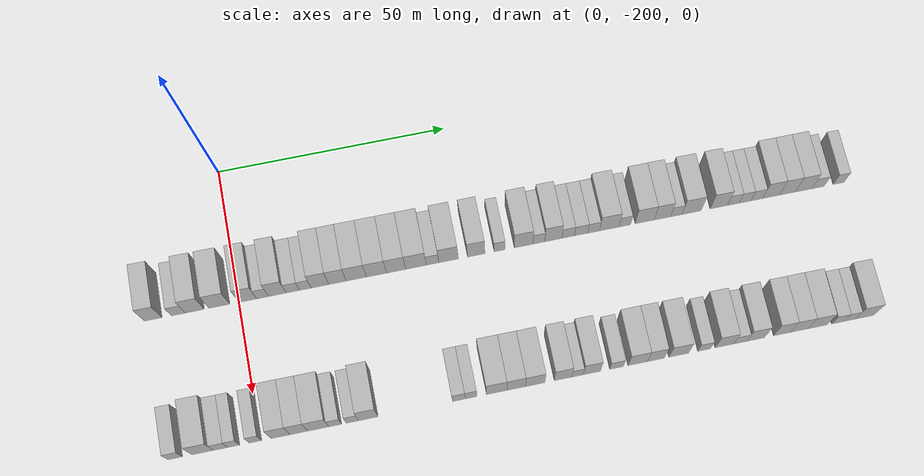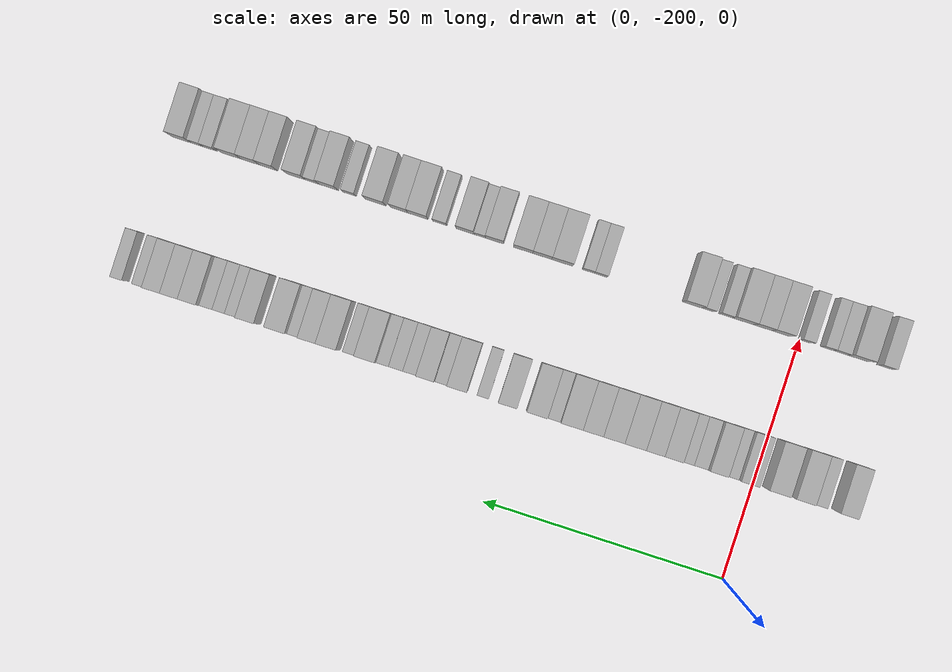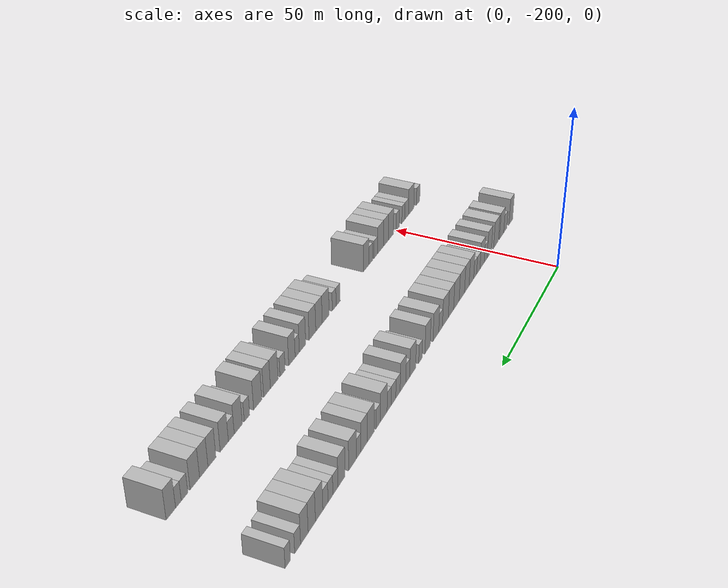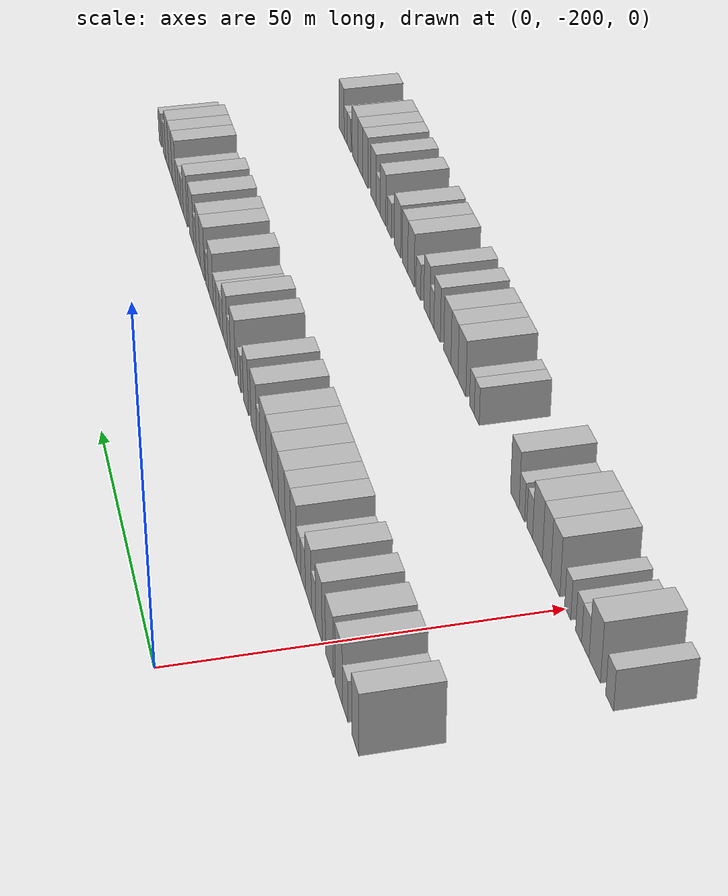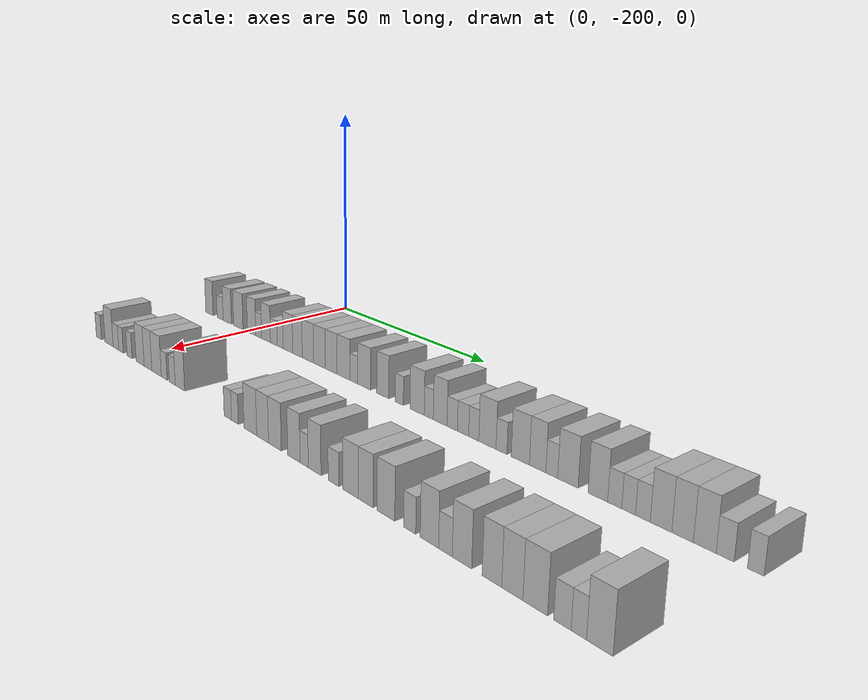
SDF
<sdf version="1.6">
 <world name="default">
  <model name="building_1">
   <static>1</static>
   <pose>25.0000 -218.1381 0 0.000000 0.000000 0.000000</pose>
   <link name="link">
    <pose>0 0 4.50 0 0 0</pose>
    <collision name="collision"><geometry><box><size>10.0000 3.7239 9.0000</size></box></geometry></collision>
    <visual name="visual">
     <cast_shadows>0</cast_shadows>
     <geometry><box><size>10.0000 3.7239 9.0000</size></box></geometry>
     <material>
      <script>
       <uri>model://HANNAS_wall/materials/scripts</uri>
       <uri>model://HANNAS_wall/materials/textures</uri>
       <name>vrc/HANNAS_wall</name>
      </script>
     </material>
    </visual>
   </link>
  </model>
  <model name="building_2">
   <static>1</static>
   <pose>25.0000 -212.7857 0 0.000000 0.000000 0.000000</pose>
   <link name="link">
    <pose>0 0 3.00 0 0 0</pose>
    <collision name="collision"><geometry><box><size>10.0000 2.9808 6.0000</size></box></geometry></collision>
    <visual name="visual">
     <cast_shadows>0</cast_shadows>
     <geometry><box><size>10.0000 2.9808 6.0000</size></box></geometry>
     <material>
      <script>
       <uri>model://HANNAS_wall/materials/scripts</uri>
       <uri>model://HANNAS_wall/materials/textures</uri>
       <name>vrc/HANNAS_wall</name>
      </script>
     </material>
    </visual>
   </link>
  </model>
  <model name="building_3">
   <static>1</static>
   <pose>25.0000 -209.2889 0 0.000000 0.000000 0.000000</pose>
   <link name="link">
    <pose>0 0 4.50 0 0 0</pose>
    <collision name="collision"><geometry><box><size>10.0000 4.0128 9.0000</size></box></geometry></collision>
    <visual name="visual">
     <cast_shadows>0</cast_shadows>
     <geometry><box><size>10.0000 4.0128 9.0000</size></box></geometry>
     <material>
      <script>
       <uri>model://HANNAS_wall/materials/scripts</uri>
       <uri>model://HANNAS_wall/materials/textures</uri>
       <name>vrc/HANNAS_wall</name>
      </script>
     </material>
    </visual>
   </link>
  </model>
  <model name="building_4">
   <static>1</static>
   <pose>25.0000 -204.0694 0 0.000000 0.000000 0.000000</pose>
   <link name="link">
    <pose>0 0 4.50 0 0 0</pose>
    <collision name="collision"><geometry><box><size>10.0000 4.4262 9.0000</size></box></geometry></collision>
    <visual name="visual">
     <cast_shadows>0</cast_shadows>
     <geometry><box><size>10.0000 4.4262 9.0000</size></box></geometry>
     <material>
      <script>
       <uri>model://HANNAS_wall/materials/scripts</uri>
       <uri>model://HANNAS_wall/materials/textures</uri>
       <name>vrc/HANNAS_wall</name>
      </script>
     </material>
    </visual>
   </link>
  </model>
  <model name="building_5">
   <static>1</static>
   <pose>25.0000 -197.9782 0 0.000000 0.000000 0.000000</pose>
   <link name="link">
    <pose>0 0 4.50 0 0 0</pose>
    <collision name="collision"><geometry><box><size>10.0000 3.7562 9.0000</size></box></geometry></collision>
    <visual name="visual">
     <cast_shadows>0</cast_shadows>
     <geometry><box><size>10.0000 3.7562 9.0000</size></box></geometry>
     <material>
      <script>
       <uri>model://HANNAS_wall/materials/scripts</uri>
       <uri>model://HANNAS_wall/materials/textures</uri>
       <name>vrc/HANNAS_wall</name>
      </script>
     </material>
    </visual>
   </link>
  </model>
  <model name="building_6">
   <static>1</static>
   <pose>25.0000 -194.8246 0 0.000000 0.000000 0.000000</pose>
   <link name="link">
    <pose>0 0 3.00 0 0 0</pose>
    <collision name="collision"><geometry><box><size>10.0000 2.5508 6.0000</size></box></geometry></collision>
    <visual name="visual">
     <cast_shadows>0</cast_shadows>
     <geometry><box><size>10.0000 2.5508 6.0000</size></box></geometry>
     <material>
      <script>
       <uri>model://HANNAS_wall/materials/scripts</uri>
       <uri>model://HANNAS_wall/materials/textures</uri>
       <name>vrc/HANNAS_wall</name>
      </script>
     </material>
    </visual>
   </link>
  </model>
  <model name="building_7">
   <static>1</static>
   <pose>25.0000 -191.6689 0 0.000000 0.000000 0.000000</pose>
   <link name="link">
    <pose>0 0 4.50 0 0 0</pose>
    <collision name="collision"><geometry><box><size>10.0000 3.7607 9.0000</size></box></geometry></collision>
    <visual name="visual">
     <cast_shadows>0</cast_shadows>
     <geometry><box><size>10.0000 3.7607 9.0000</size></box></geometry>
     <material>
      <script>
       <uri>model://HANNAS_wall/materials/scripts</uri>
       <uri>model://HANNAS_wall/materials/textures</uri>
       <name>vrc/HANNAS_wall</name>
      </script>
     </material>
    </visual>
   </link>
  </model>
  <model name="building_8">
   <static>1</static>
   <pose>25.0000 -188.3491 0 0.000000 0.000000 0.000000</pose>
   <link name="link">
    <pose>0 0 3.00 0 0 0</pose>
    <collision name="collision"><geometry><box><size>10.0000 2.8788 6.0000</size></box></geometry></collision>
    <visual name="visual">
     <cast_shadows>0</cast_shadows>
     <geometry><box><size>10.0000 2.8788 6.0000</size></box></geometry>
     <material>
      <script>
       <uri>model://HANNAS_wall/materials/scripts</uri>
       <uri>model://HANNAS_wall/materials/textures</uri>
       <name>vrc/HANNAS_wall</name>
      </script>
     </material>
    </visual>
   </link>
  </model>
  <model name="building_9">
   <static>1</static>
   <pose>25.0000 -185.6596 0 0.000000 0.000000 0.000000</pose>
   <link name="link">
    <pose>0 0 3.00 0 0 0</pose>
    <collision name="collision"><geometry><box><size>10.0000 2.5003 6.0000</size></box></geometry></collision>
    <visual name="visual">
     <cast_shadows>0</cast_shadows>
     <geometry><box><size>10.0000 2.5003 6.0000</size></box></geometry>
     <material>
      <script>
       <uri>model://HANNAS_wall/materials/scripts</uri>
       <uri>model://HANNAS_wall/materials/textures</uri>
       <name>vrc/HANNAS_wall</name>
      </script>
     </material>
    </visual>
   </link>
  </model>
  <model name="building_10">
   <static>1</static>
   <pose>25.0000 -182.4917 0 0.000000 0.000000 0.000000</pose>
   <link name="link">
    <pose>0 0 4.50 0 0 0</pose>
    <collision name="collision"><geometry><box><size>10.0000 3.8355 9.0000</size></box></geometry></collision>
    <visual name="visual">
     <cast_shadows>0</cast_shadows>
     <geometry><box><size>10.0000 3.8355 9.0000</size></box></geometry>
     <material>
      <script>
       <uri>model://HANNAS_wall/materials/scripts</uri>
       <uri>model://HANNAS_wall/materials/textures</uri>
       <name>vrc/HANNAS_wall</name>
      </script>
     </material>
    </visual>
   </link>
  </model>
  <model name="building_11">
   <static>1</static>
   <pose>25.0000 -178.6902 0 0.000000 0.000000 0.000000</pose>
   <link name="link">
    <pose>0 0 4.50 0 0 0</pose>
    <collision name="collision"><geometry><box><size>10.0000 3.7673 9.0000</size></box></geometry></collision>
    <visual name="visual">
     <cast_shadows>0</cast_shadows>
     <geometry><box><size>10.0000 3.7673 9.0000</size></box></geometry>
     <material>
      <script>
       <uri>model://HANNAS_wall/materials/scripts</uri>
       <uri>model://HANNAS_wall/materials/textures</uri>
       <name>vrc/HANNAS_wall</name>
      </script>
     </material>
    </visual>
   </link>
  </model>
  <model name="building_12">
   <static>1</static>
   <pose>25.0000 -174.6335 0 0.000000 0.000000 0.000000</pose>
   <link name="link">
    <pose>0 0 4.50 0 0 0</pose>
    <collision name="collision"><geometry><box><size>10.0000 4.3462 9.0000</size></box></geometry></collision>
    <visual name="visual">
     <cast_shadows>0</cast_shadows>
     <geometry><box><size>10.0000 4.3462 9.0000</size></box></geometry>
     <material>
      <script>
       <uri>model://HANNAS_wall/materials/scripts</uri>
       <uri>model://HANNAS_wall/materials/textures</uri>
       <name>vrc/HANNAS_wall</name>
      </script>
     </material>
    </visual>
   </link>
  </model>
  <model name="building_13">
   <static>1</static>
   <pose>25.0000 -170.2885 0 0.000000 0.000000 0.000000</pose>
   <link name="link">
    <pose>0 0 4.50 0 0 0</pose>
    <collision name="collision"><geometry><box><size>10.0000 4.3437 9.0000</size></box></geometry></collision>
    <visual name="visual">
     <cast_shadows>0</cast_shadows>
     <geometry><box><size>10.0000 4.3437 9.0000</size></box></geometry>
     <material>
      <script>
       <uri>model://HANNAS_wall/materials/scripts</uri>
       <uri>model://HANNAS_wall/materials/textures</uri>
       <name>vrc/HANNAS_wall</name>
      </script>
     </material>
    </visual>
   </link>
  </model>
  <model name="building_14">
   <static>1</static>
   <pose>25.0000 -166.0444 0 0.000000 0.000000 0.000000</pose>
   <link name="link">
    <pose>0 0 4.50 0 0 0</pose>
    <collision name="collision"><geometry><box><size>10.0000 4.1443 9.0000</size></box></geometry></collision>
    <visual name="visual">
     <cast_shadows>0</cast_shadows>
     <geometry><box><size>10.0000 4.1443 9.0000</size></box></geometry>
     <material>
      <script>
       <uri>model://HANNAS_wall/materials/scripts</uri>
       <uri>model://HANNAS_wall/materials/textures</uri>
       <name>vrc/HANNAS_wall</name>
      </script>
     </material>
    </visual>
   </link>
  </model>
  <model name="building_15">
   <static>1</static>
   <pose>25.0000 -161.7334 0 0.000000 0.000000 0.000000</pose>
   <link name="link">
    <pose>0 0 4.50 0 0 0</pose>
    <collision name="collision"><geometry><box><size>10.0000 4.4777 9.0000</size></box></geometry></collision>
    <visual name="visual">
     <cast_shadows>0</cast_shadows>
     <geometry><box><size>10.0000 4.4777 9.0000</size></box></geometry>
     <material>
      <script>
       <uri>model://HANNAS_wall/materials/scripts</uri>
       <uri>model://HANNAS_wall/materials/textures</uri>
       <name>vrc/HANNAS_wall</name>
      </script>
     </material>
    </visual>
   </link>
  </model>
  <model name="building_16">
   <static>1</static>
   <pose>25.0000 -158.1381 0 0.000000 0.000000 0.000000</pose>
   <link name="link">
    <pose>0 0 3.00 0 0 0</pose>
    <collision name="collision"><geometry><box><size>10.0000 2.7131 6.0000</size></box></geometry></collision>
    <visual name="visual">
     <cast_shadows>0</cast_shadows>
     <geometry><box><size>10.0000 2.7131 6.0000</size></box></geometry>
     <material>
      <script>
       <uri>model://HANNAS_wall/materials/scripts</uri>
       <uri>model://HANNAS_wall/materials/textures</uri>
       <name>vrc/HANNAS_wall</name>
      </script>
     </material>
    </visual>
   </link>
  </model>
  <model name="building_17">
   <static>1</static>
   <pose>25.0000 -154.6618 0 0.000000 0.000000 0.000000</pose>
   <link name="link">
    <pose>0 0 4.50 0 0 0</pose>
    <collision name="collision"><geometry><box><size>10.0000 4.2395 9.0000</size></box></geometry></collision>
    <visual name="visual">
     <cast_shadows>0</cast_shadows>
     <geometry><box><size>10.0000 4.2395 9.0000</size></box></geometry>
     <material>
      <script>
       <uri>model://HANNAS_wall/materials/scripts</uri>
       <uri>model://HANNAS_wall/materials/textures</uri>
       <name>vrc/HANNAS_wall</name>
      </script>
     </material>
    </visual>
   </link>
  </model>
  <model name="building_18">
   <static>1</static>
   <pose>25.0000 -148.6425 0 0.000000 0.000000 0.000000</pose>
   <link name="link">
    <pose>0 0 4.50 0 0 0</pose>
    <collision name="collision"><geometry><box><size>10.0000 3.7990 9.0000</size></box></geometry></collision>
    <visual name="visual">
     <cast_shadows>0</cast_shadows>
     <geometry><box><size>10.0000 3.7990 9.0000</size></box></geometry>
     <material>
      <script>
       <uri>model://HANNAS_wall/materials/scripts</uri>
       <uri>model://HANNAS_wall/materials/textures</uri>
       <name>vrc/HANNAS_wall</name>
      </script>
     </material>
    </visual>
   </link>
  </model>
  <model name="building_19">
   <static>1</static>
   <pose>25.0000 -143.5411 0 0.000000 0.000000 0.000000</pose>
   <link name="link">
    <pose>0 0 3.00 0 0 0</pose>
    <collision name="collision"><geometry><box><size>10.0000 2.4039 6.0000</size></box></geometry></collision>
    <visual name="visual">
     <cast_shadows>0</cast_shadows>
     <geometry><box><size>10.0000 2.4039 6.0000</size></box></geometry>
     <material>
      <script>
       <uri>model://HANNAS_wall/materials/scripts</uri>
       <uri>model://HANNAS_wall/materials/textures</uri>
       <name>vrc/HANNAS_wall</name>
      </script>
     </material>
    </visual>
   </link>
  </model>
  <model name="building_20">
   <static>1</static>
   <pose>25.0000 -138.2847 0 0.000000 0.000000 0.000000</pose>
   <link name="link">
    <pose>0 0 4.50 0 0 0</pose>
    <collision name="collision"><geometry><box><size>10.0000 4.1088 9.0000</size></box></geometry></collision>
    <visual name="visual">
     <cast_shadows>0</cast_shadows>
     <geometry><box><size>10.0000 4.1088 9.0000</size></box></geometry>
     <material>
      <script>
       <uri>model://HANNAS_wall/materials/scripts</uri>
       <uri>model://HANNAS_wall/materials/textures</uri>
       <name>vrc/HANNAS_wall</name>
      </script>
     </material>
    </visual>
   </link>
  </model>
  <model name="building_21">
   <static>1</static>
   <pose>25.0000 -134.9538 0 0.000000 0.000000 0.000000</pose>
   <link name="link">
    <pose>0 0 3.00 0 0 0</pose>
    <collision name="collision"><geometry><box><size>10.0000 2.5530 6.0000</size></box></geometry></collision>
    <visual name="visual">
     <cast_shadows>0</cast_shadows>
     <geometry><box><size>10.0000 2.5530 6.0000</size></box></geometry>
     <material>
      <script>
       <uri>model://HANNAS_wall/materials/scripts</uri>
       <uri>model://HANNAS_wall/materials/textures</uri>
       <name>vrc/HANNAS_wall</name>
      </script>
     </material>
    </visual>
   </link>
  </model>
  <model name="building_22">
   <static>1</static>
   <pose>25.0000 -131.8000 0 0.000000 0.000000 0.000000</pose>
   <link name="link">
    <pose>0 0 4.50 0 0 0</pose>
    <collision name="collision"><geometry><box><size>10.0000 3.7545 9.0000</size></box></geometry></collision>
    <visual name="visual">
     <cast_shadows>0</cast_shadows>
     <geometry><box><size>10.0000 3.7545 9.0000</size></box></geometry>
     <material>
      <script>
       <uri>model://HANNAS_wall/materials/scripts</uri>
       <uri>model://HANNAS_wall/materials/textures</uri>
       <name>vrc/HANNAS_wall</name>
      </script>
     </material>
    </visual>
   </link>
  </model>
  <model name="building_23">
   <static>1</static>
   <pose>25.0000 -128.5241 0 0.000000 0.000000 0.000000</pose>
   <link name="link">
    <pose>0 0 3.00 0 0 0</pose>
    <collision name="collision"><geometry><box><size>10.0000 2.7974 6.0000</size></box></geometry></collision>
    <visual name="visual">
     <cast_shadows>0</cast_shadows>
     <geometry><box><size>10.0000 2.7974 6.0000</size></box></geometry>
     <material>
      <script>
       <uri>model://HANNAS_wall/materials/scripts</uri>
       <uri>model://HANNAS_wall/materials/textures</uri>
       <name>vrc/HANNAS_wall</name>
      </script>
     </material>
    </visual>
   </link>
  </model>
  <model name="building_24">
   <static>1</static>
   <pose>25.0000 -125.6528 0 0.000000 0.000000 0.000000</pose>
   <link name="link">
    <pose>0 0 3.00 0 0 0</pose>
    <collision name="collision"><geometry><box><size>10.0000 2.9451 6.0000</size></box></geometry></collision>
    <visual name="visual">
     <cast_shadows>0</cast_shadows>
     <geometry><box><size>10.0000 2.9451 6.0000</size></box></geometry>
     <material>
      <script>
       <uri>model://HANNAS_wall/materials/scripts</uri>
       <uri>model://HANNAS_wall/materials/textures</uri>
       <name>vrc/HANNAS_wall</name>
      </script>
     </material>
    </visual>
   </link>
  </model>
  <model name="building_25">
   <static>1</static>
   <pose>25.0000 -122.9113 0 0.000000 0.000000 0.000000</pose>
   <link name="link">
    <pose>0 0 3.00 0 0 0</pose>
    <collision name="collision"><geometry><box><size>10.0000 2.5378 6.0000</size></box></geometry></collision>
    <visual name="visual">
     <cast_shadows>0</cast_shadows>
     <geometry><box><size>10.0000 2.5378 6.0000</size></box></geometry>
     <material>
      <script>
       <uri>model://HANNAS_wall/materials/scripts</uri>
       <uri>model://HANNAS_wall/materials/textures</uri>
       <name>vrc/HANNAS_wall</name>
      </script>
     </material>
    </visual>
   </link>
  </model>
  <model name="building_26">
   <static>1</static>
   <pose>25.0000 -119.5034 0 0.000000 0.000000 0.000000</pose>
   <link name="link">
    <pose>0 0 4.50 0 0 0</pose>
    <collision name="collision"><geometry><box><size>10.0000 4.2780 9.0000</size></box></geometry></collision>
    <visual name="visual">
     <cast_shadows>0</cast_shadows>
     <geometry><box><size>10.0000 4.2780 9.0000</size></box></geometry>
     <material>
      <script>
       <uri>model://HANNAS_wall/materials/scripts</uri>
       <uri>model://HANNAS_wall/materials/textures</uri>
       <name>vrc/HANNAS_wall</name>
      </script>
     </material>
    </visual>
   </link>
  </model>
  <model name="building_27">
   <static>1</static>
   <pose>25.0000 -116.0548 0 0.000000 0.000000 0.000000</pose>
   <link name="link">
    <pose>0 0 3.00 0 0 0</pose>
    <collision name="collision"><geometry><box><size>10.0000 2.6193 6.0000</size></box></geometry></collision>
    <visual name="visual">
     <cast_shadows>0</cast_shadows>
     <geometry><box><size>10.0000 2.6193 6.0000</size></box></geometry>
     <material>
      <script>
       <uri>model://HANNAS_wall/materials/scripts</uri>
       <uri>model://HANNAS_wall/materials/textures</uri>
       <name>vrc/HANNAS_wall</name>
      </script>
     </material>
    </visual>
   </link>
  </model>
  <model name="building_28">
   <static>1</static>
   <pose>25.0000 -111.6544 0 0.000000 0.000000 0.000000</pose>
   <link name="link">
    <pose>0 0 4.50 0 0 0</pose>
    <collision name="collision"><geometry><box><size>10.0000 4.1814 9.0000</size></box></geometry></collision>
    <visual name="visual">
     <cast_shadows>0</cast_shadows>
     <geometry><box><size>10.0000 4.1814 9.0000</size></box></geometry>
     <material>
      <script>
       <uri>model://HANNAS_wall/materials/scripts</uri>
       <uri>model://HANNAS_wall/materials/textures</uri>
       <name>vrc/HANNAS_wall</name>
      </script>
     </material>
    </visual>
   </link>
  </model>
  <model name="building_29">
   <static>1</static>
   <pose>25.0000 -107.7381 0 0.000000 0.000000 0.000000</pose>
   <link name="link">
    <pose>0 0 4.50 0 0 0</pose>
    <collision name="collision"><geometry><box><size>10.0000 3.6512 9.0000</size></box></geometry></collision>
    <visual name="visual">
     <cast_shadows>0</cast_shadows>
     <geometry><box><size>10.0000 3.6512 9.0000</size></box></geometry>
     <material>
      <script>
       <uri>model://HANNAS_wall/materials/scripts</uri>
       <uri>model://HANNAS_wall/materials/textures</uri>
       <name>vrc/HANNAS_wall</name>
      </script>
     </material>
    </visual>
   </link>
  </model>
  <model name="building_30">
   <static>1</static>
   <pose>25.0000 -104.6395 0 0.000000 0.000000 0.000000</pose>
   <link name="link">
    <pose>0 0 3.00 0 0 0</pose>
    <collision name="collision"><geometry><box><size>10.0000 2.5461 6.0000</size></box></geometry></collision>
    <visual name="visual">
     <cast_shadows>0</cast_shadows>
     <geometry><box><size>10.0000 2.5461 6.0000</size></box></geometry>
     <material>
      <script>
       <uri>model://HANNAS_wall/materials/scripts</uri>
       <uri>model://HANNAS_wall/materials/textures</uri>
       <name>vrc/HANNAS_wall</name>
      </script>
     </material>
    </visual>
   </link>
  </model>
  <model name="building_31">
   <static>1</static>
   <pose>25.0000 -101.2330 0 0.000000 0.000000 0.000000</pose>
   <link name="link">
    <pose>0 0 4.50 0 0 0</pose>
    <collision name="collision"><geometry><box><size>10.0000 4.2669 9.0000</size></box></geometry></collision>
    <visual name="visual">
     <cast_shadows>0</cast_shadows>
     <geometry><box><size>10.0000 4.2669 9.0000</size></box></geometry>
     <material>
      <script>
       <uri>model://HANNAS_wall/materials/scripts</uri>
       <uri>model://HANNAS_wall/materials/textures</uri>
       <name>vrc/HANNAS_wall</name>
      </script>
     </material>
    </visual>
   </link>
  </model>
  <model name="building_32">
   <static>1</static>
   <pose>25.0000 -95.1772 0 0.000000 0.000000 0.000000</pose>
   <link name="link">
    <pose>0 0 4.50 0 0 0</pose>
    <collision name="collision"><geometry><box><size>10.0000 3.8447 9.0000</size></box></geometry></collision>
    <visual name="visual">
     <cast_shadows>0</cast_shadows>
     <geometry><box><size>10.0000 3.8447 9.0000</size></box></geometry>
     <material>
      <script>
       <uri>model://HANNAS_wall/materials/scripts</uri>
       <uri>model://HANNAS_wall/materials/textures</uri>
       <name>vrc/HANNAS_wall</name>
      </script>
     </material>
    </visual>
   </link>
  </model>
  <model name="building_33">
   <static>1</static>
   <pose>25.0000 -91.9162 0 0.000000 0.000000 0.000000</pose>
   <link name="link">
    <pose>0 0 3.00 0 0 0</pose>
    <collision name="collision"><geometry><box><size>10.0000 2.6773 6.0000</size></box></geometry></collision>
    <visual name="visual">
     <cast_shadows>0</cast_shadows>
     <geometry><box><size>10.0000 2.6773 6.0000</size></box></geometry>
     <material>
      <script>
       <uri>model://HANNAS_wall/materials/scripts</uri>
       <uri>model://HANNAS_wall/materials/textures</uri>
       <name>vrc/HANNAS_wall</name>
      </script>
     </material>
    </visual>
   </link>
  </model>
  <model name="building_34">
   <static>1</static>
   <pose>25.0000 -89.3079 0 0.000000 0.000000 0.000000</pose>
   <link name="link">
    <pose>0 0 3.00 0 0 0</pose>
    <collision name="collision"><geometry><box><size>10.0000 2.5394 6.0000</size></box></geometry></collision>
    <visual name="visual">
     <cast_shadows>0</cast_shadows>
     <geometry><box><size>10.0000 2.5394 6.0000</size></box></geometry>
     <material>
      <script>
       <uri>model://HANNAS_wall/materials/scripts</uri>
       <uri>model://HANNAS_wall/materials/textures</uri>
       <name>vrc/HANNAS_wall</name>
      </script>
     </material>
    </visual>
   </link>
  </model>
  <model name="building_35">
   <static>1</static>
   <pose>25.0000 -86.7060 0 0.000000 0.000000 0.000000</pose>
   <link name="link">
    <pose>0 0 3.00 0 0 0</pose>
    <collision name="collision"><geometry><box><size>10.0000 2.6643 6.0000</size></box></geometry></collision>
    <visual name="visual">
     <cast_shadows>0</cast_shadows>
     <geometry><box><size>10.0000 2.6643 6.0000</size></box></geometry>
     <material>
      <script>
       <uri>model://HANNAS_wall/materials/scripts</uri>
       <uri>model://HANNAS_wall/materials/textures</uri>
       <name>vrc/HANNAS_wall</name>
      </script>
     </material>
    </visual>
   </link>
  </model>
  <model name="building_36">
   <static>1</static>
   <pose>25.0000 -83.5017 0 0.000000 0.000000 0.000000</pose>
   <link name="link">
    <pose>0 0 4.50 0 0 0</pose>
    <collision name="collision"><geometry><box><size>10.0000 3.7444 9.0000</size></box></geometry></collision>
    <visual name="visual">
     <cast_shadows>0</cast_shadows>
     <geometry><box><size>10.0000 3.7444 9.0000</size></box></geometry>
     <material>
      <script>
       <uri>model://HANNAS_wall/materials/scripts</uri>
       <uri>model://HANNAS_wall/materials/textures</uri>
       <name>vrc/HANNAS_wall</name>
      </script>
     </material>
    </visual>
   </link>
  </model>
  <model name="building_37">
   <static>1</static>
   <pose>25.0000 -79.8183 0 0.000000 0.000000 0.000000</pose>
   <link name="link">
    <pose>0 0 4.50 0 0 0</pose>
    <collision name="collision"><geometry><box><size>10.0000 3.6223 9.0000</size></box></geometry></collision>
    <visual name="visual">
     <cast_shadows>0</cast_shadows>
     <geometry><box><size>10.0000 3.6223 9.0000</size></box></geometry>
     <material>
      <script>
       <uri>model://HANNAS_wall/materials/scripts</uri>
       <uri>model://HANNAS_wall/materials/textures</uri>
       <name>vrc/HANNAS_wall</name>
      </script>
     </material>
    </visual>
   </link>
  </model>
  <model name="building_38">
   <static>1</static>
   <pose>25.0000 -76.1771 0 0.000000 0.000000 0.000000</pose>
   <link name="link">
    <pose>0 0 4.50 0 0 0</pose>
    <collision name="collision"><geometry><box><size>10.0000 3.6602 9.0000</size></box></geometry></collision>
    <visual name="visual">
     <cast_shadows>0</cast_shadows>
     <geometry><box><size>10.0000 3.6602 9.0000</size></box></geometry>
     <material>
      <script>
       <uri>model://HANNAS_wall/materials/scripts</uri>
       <uri>model://HANNAS_wall/materials/textures</uri>
       <name>vrc/HANNAS_wall</name>
      </script>
     </material>
    </visual>
   </link>
  </model>
  <model name="building_39">
   <static>1</static>
   <pose>25.0000 -72.9462 0 0.000000 0.000000 0.000000</pose>
   <link name="link">
    <pose>0 0 3.00 0 0 0</pose>
    <collision name="collision"><geometry><box><size>10.0000 2.8016 6.0000</size></box></geometry></collision>
    <visual name="visual">
     <cast_shadows>0</cast_shadows>
     <geometry><box><size>10.0000 2.8016 6.0000</size></box></geometry>
     <material>
      <script>
       <uri>model://HANNAS_wall/materials/scripts</uri>
       <uri>model://HANNAS_wall/materials/textures</uri>
       <name>vrc/HANNAS_wall</name>
      </script>
     </material>
    </visual>
   </link>
  </model>
  <model name="building_40">
   <static>1</static>
   <pose>25.0000 -68.3101 0 0.000000 0.000000 0.000000</pose>
   <link name="link">
    <pose>0 0 3.00 0 0 0</pose>
    <collision name="collision"><geometry><box><size>10.0000 2.4704 6.0000</size></box></geometry></collision>
    <visual name="visual">
     <cast_shadows>0</cast_shadows>
     <geometry><box><size>10.0000 2.4704 6.0000</size></box></geometry>
     <material>
      <script>
       <uri>model://HANNAS_wall/materials/scripts</uri>
       <uri>model://HANNAS_wall/materials/textures</uri>
       <name>vrc/HANNAS_wall</name>
      </script>
     </material>
    </visual>
   </link>
  </model>
  <model name="building_116">
   <static>1</static>
   <pose>55.0000 -217.5224 0 0.000000 0.000000 0.000000</pose>
   <link name="link">
    <pose>0 0 3.00 0 0 0</pose>
    <collision name="collision"><geometry><box><size>10.0000 2.9552 6.0000</size></box></geometry></collision>
    <visual name="visual">
     <cast_shadows>0</cast_shadows>
     <geometry><box><size>10.0000 2.9552 6.0000</size></box></geometry>
     <material>
      <script>
       <uri>model://HANNAS_wall/materials/scripts</uri>
       <uri>model://HANNAS_wall/materials/textures</uri>
       <name>vrc/HANNAS_wall</name>
      </script>
     </material>
    </visual>
   </link>
  </model>
  <model name="building_117">
   <static>1</static>
   <pose>55.0000 -211.8167 0 0.000000 0.000000 0.000000</pose>
   <link name="link">
    <pose>0 0 4.50 0 0 0</pose>
    <collision name="collision"><geometry><box><size>10.0000 4.4562 9.0000</size></box></geometry></collision>
    <visual name="visual">
     <cast_shadows>0</cast_shadows>
     <geometry><box><size>10.0000 4.4562 9.0000</size></box></geometry>
     <material>
      <script>
       <uri>model://HANNAS_wall/materials/scripts</uri>
       <uri>model://HANNAS_wall/materials/textures</uri>
       <name>vrc/HANNAS_wall</name>
      </script>
     </material>
    </visual>
   </link>
  </model>
  <model name="building_118">
   <static>1</static>
   <pose>55.0000 -208.1028 0 0.000000 0.000000 0.000000</pose>
   <link name="link">
    <pose>0 0 3.00 0 0 0</pose>
    <collision name="collision"><geometry><box><size>10.0000 2.9718 6.0000</size></box></geometry></collision>
    <visual name="visual">
     <cast_shadows>0</cast_shadows>
     <geometry><box><size>10.0000 2.9718 6.0000</size></box></geometry>
     <material>
      <script>
       <uri>model://HANNAS_wall/materials/scripts</uri>
       <uri>model://HANNAS_wall/materials/textures</uri>
       <name>vrc/HANNAS_wall</name>
      </script>
     </material>
    </visual>
   </link>
  </model>
  <model name="building_119">
   <static>1</static>
   <pose>55.0000 -205.4088 0 0.000000 0.000000 0.000000</pose>
   <link name="link">
    <pose>0 0 3.00 0 0 0</pose>
    <collision name="collision"><geometry><box><size>10.0000 2.4161 6.0000</size></box></geometry></collision>
    <visual name="visual">
     <cast_shadows>0</cast_shadows>
     <geometry><box><size>10.0000 2.4161 6.0000</size></box></geometry>
     <material>
      <script>
       <uri>model://HANNAS_wall/materials/scripts</uri>
       <uri>model://HANNAS_wall/materials/textures</uri>
       <name>vrc/HANNAS_wall</name>
      </script>
     </material>
    </visual>
   </link>
  </model>
  <model name="building_120">
   <static>1</static>
   <pose>55.0000 -200.9271 0 0.000000 0.000000 0.000000</pose>
   <link name="link">
    <pose>0 0 3.00 0 0 0</pose>
    <collision name="collision"><geometry><box><size>10.0000 2.5475 6.0000</size></box></geometry></collision>
    <visual name="visual">
     <cast_shadows>0</cast_shadows>
     <geometry><box><size>10.0000 2.5475 6.0000</size></box></geometry>
     <material>
      <script>
       <uri>model://HANNAS_wall/materials/scripts</uri>
       <uri>model://HANNAS_wall/materials/textures</uri>
       <name>vrc/HANNAS_wall</name>
      </script>
     </material>
    </visual>
   </link>
  </model>
  <model name="building_121">
   <static>1</static>
   <pose>55.0000 -195.6842 0 0.000000 0.000000 0.000000</pose>
   <link name="link">
    <pose>0 0 4.50 0 0 0</pose>
    <collision name="collision"><geometry><box><size>10.0000 3.9383 9.0000</size></box></geometry></collision>
    <visual name="visual">
     <cast_shadows>0</cast_shadows>
     <geometry><box><size>10.0000 3.9383 9.0000</size></box></geometry>
     <material>
      <script>
       <uri>model://HANNAS_wall/materials/scripts</uri>
       <uri>model://HANNAS_wall/materials/textures</uri>
       <name>vrc/HANNAS_wall</name>
      </script>
     </material>
    </visual>
   </link>
  </model>
  <model name="building_122">
   <static>1</static>
   <pose>55.0000 -191.8814 0 0.000000 0.000000 0.000000</pose>
   <link name="link">
    <pose>0 0 4.50 0 0 0</pose>
    <collision name="collision"><geometry><box><size>10.0000 3.6673 9.0000</size></box></geometry></collision>
    <visual name="visual">
     <cast_shadows>0</cast_shadows>
     <geometry><box><size>10.0000 3.6673 9.0000</size></box></geometry>
     <material>
      <script>
       <uri>model://HANNAS_wall/materials/scripts</uri>
       <uri>model://HANNAS_wall/materials/textures</uri>
       <name>vrc/HANNAS_wall</name>
      </script>
     </material>
    </visual>
   </link>
  </model>
  <model name="building_123">
   <static>1</static>
   <pose>55.0000 -187.8413 0 0.000000 0.000000 0.000000</pose>
   <link name="link">
    <pose>0 0 4.50 0 0 0</pose>
    <collision name="collision"><geometry><box><size>10.0000 4.4129 9.0000</size></box></geometry></collision>
    <visual name="visual">
     <cast_shadows>0</cast_shadows>
     <geometry><box><size>10.0000 4.4129 9.0000</size></box></geometry>
     <material>
      <script>
       <uri>model://HANNAS_wall/materials/scripts</uri>
       <uri>model://HANNAS_wall/materials/textures</uri>
       <name>vrc/HANNAS_wall</name>
      </script>
     </material>
    </visual>
   </link>
  </model>
  <model name="building_124">
   <static>1</static>
   <pose>55.0000 -184.3094 0 0.000000 0.000000 0.000000</pose>
   <link name="link">
    <pose>0 0 3.00 0 0 0</pose>
    <collision name="collision"><geometry><box><size>10.0000 2.6508 6.0000</size></box></geometry></collision>
    <visual name="visual">
     <cast_shadows>0</cast_shadows>
     <geometry><box><size>10.0000 2.6508 6.0000</size></box></geometry>
     <material>
      <script>
       <uri>model://HANNAS_wall/materials/scripts</uri>
       <uri>model://HANNAS_wall/materials/textures</uri>
       <name>vrc/HANNAS_wall</name>
      </script>
     </material>
    </visual>
   </link>
  </model>
  <model name="building_125">
   <static>1</static>
   <pose>55.0000 -180.7027 0 0.000000 0.000000 0.000000</pose>
   <link name="link">
    <pose>0 0 3.00 0 0 0</pose>
    <collision name="collision"><geometry><box><size>10.0000 2.5627 6.0000</size></box></geometry></collision>
    <visual name="visual">
     <cast_shadows>0</cast_shadows>
     <geometry><box><size>10.0000 2.5627 6.0000</size></box></geometry>
     <material>
      <script>
       <uri>model://HANNAS_wall/materials/scripts</uri>
       <uri>model://HANNAS_wall/materials/textures</uri>
       <name>vrc/HANNAS_wall</name>
      </script>
     </material>
    </visual>
   </link>
  </model>
  <model name="building_126">
   <static>1</static>
   <pose>55.0000 -177.3865 0 0.000000 0.000000 0.000000</pose>
   <link name="link">
    <pose>0 0 4.50 0 0 0</pose>
    <collision name="collision"><geometry><box><size>10.0000 4.0697 9.0000</size></box></geometry></collision>
    <visual name="visual">
     <cast_shadows>0</cast_shadows>
     <geometry><box><size>10.0000 4.0697 9.0000</size></box></geometry>
     <material>
      <script>
       <uri>model://HANNAS_wall/materials/scripts</uri>
       <uri>model://HANNAS_wall/materials/textures</uri>
       <name>vrc/HANNAS_wall</name>
      </script>
     </material>
    </visual>
   </link>
  </model>
  <model name="building_127">
   <static>1</static>
   <pose>55.0000 -158.3214 0 0.000000 0.000000 0.000000</pose>
   <link name="link">
    <pose>0 0 3.00 0 0 0</pose>
    <collision name="collision"><geometry><box><size>10.0000 2.6868 6.0000</size></box></geometry></collision>
    <visual name="visual">
     <cast_shadows>0</cast_shadows>
     <geometry><box><size>10.0000 2.6868 6.0000</size></box></geometry>
     <material>
      <script>
       <uri>model://HANNAS_wall/materials/scripts</uri>
       <uri>model://HANNAS_wall/materials/textures</uri>
       <name>vrc/HANNAS_wall</name>
      </script>
     </material>
    </visual>
   </link>
  </model>
  <model name="building_128">
   <static>1</static>
   <pose>55.0000 -155.7384 0 0.000000 0.000000 0.000000</pose>
   <link name="link">
    <pose>0 0 3.00 0 0 0</pose>
    <collision name="collision"><geometry><box><size>10.0000 2.4794 6.0000</size></box></geometry></collision>
    <visual name="visual">
     <cast_shadows>0</cast_shadows>
     <geometry><box><size>10.0000 2.4794 6.0000</size></box></geometry>
     <material>
      <script>
       <uri>model://HANNAS_wall/materials/scripts</uri>
       <uri>model://HANNAS_wall/materials/textures</uri>
       <name>vrc/HANNAS_wall</name>
      </script>
     </material>
    </visual>
   </link>
  </model>
  <model name="building_129">
   <static>1</static>
   <pose>55.0000 -150.3178 0 0.000000 0.000000 0.000000</pose>
   <link name="link">
    <pose>0 0 4.50 0 0 0</pose>
    <collision name="collision"><geometry><box><size>10.0000 4.3618 9.0000</size></box></geometry></collision>
    <visual name="visual">
     <cast_shadows>0</cast_shadows>
     <geometry><box><size>10.0000 4.3618 9.0000</size></box></geometry>
     <material>
      <script>
       <uri>model://HANNAS_wall/materials/scripts</uri>
       <uri>model://HANNAS_wall/materials/textures</uri>
       <name>vrc/HANNAS_wall</name>
      </script>
     </material>
    </visual>
   </link>
  </model>
  <model name="building_130">
   <static>1</static>
   <pose>55.0000 -146.1750 0 0.000000 0.000000 0.000000</pose>
   <link name="link">
    <pose>0 0 4.50 0 0 0</pose>
    <collision name="collision"><geometry><box><size>10.0000 3.9238 9.0000</size></box></geometry></collision>
    <visual name="visual">
     <cast_shadows>0</cast_shadows>
     <geometry><box><size>10.0000 3.9238 9.0000</size></box></geometry>
     <material>
      <script>
       <uri>model://HANNAS_wall/materials/scripts</uri>
       <uri>model://HANNAS_wall/materials/textures</uri>
       <name>vrc/HANNAS_wall</name>
      </script>
     </material>
    </visual>
   </link>
  </model>
  <model name="building_131">
   <static>1</static>
   <pose>55.0000 -142.1698 0 0.000000 0.000000 0.000000</pose>
   <link name="link">
    <pose>0 0 4.50 0 0 0</pose>
    <collision name="collision"><geometry><box><size>10.0000 4.0866 9.0000</size></box></geometry></collision>
    <visual name="visual">
     <cast_shadows>0</cast_shadows>
     <geometry><box><size>10.0000 4.0866 9.0000</size></box></geometry>
     <material>
      <script>
       <uri>model://HANNAS_wall/materials/scripts</uri>
       <uri>model://HANNAS_wall/materials/textures</uri>
       <name>vrc/HANNAS_wall</name>
      </script>
     </material>
    </visual>
   </link>
  </model>
  <model name="building_132">
   <static>1</static>
   <pose>55.0000 -136.2535 0 0.000000 0.000000 0.000000</pose>
   <link name="link">
    <pose>0 0 4.50 0 0 0</pose>
    <collision name="collision"><geometry><box><size>10.0000 3.7459 9.0000</size></box></geometry></collision>
    <visual name="visual">
     <cast_shadows>0</cast_shadows>
     <geometry><box><size>10.0000 3.7459 9.0000</size></box></geometry>
     <material>
      <script>
       <uri>model://HANNAS_wall/materials/scripts</uri>
       <uri>model://HANNAS_wall/materials/textures</uri>
       <name>vrc/HANNAS_wall</name>
      </script>
     </material>
    </visual>
   </link>
  </model>
  <model name="building_133">
   <static>1</static>
   <pose>55.0000 -133.1735 0 0.000000 0.000000 0.000000</pose>
   <link name="link">
    <pose>0 0 3.00 0 0 0</pose>
    <collision name="collision"><geometry><box><size>10.0000 2.4140 6.0000</size></box></geometry></collision>
    <visual name="visual">
     <cast_shadows>0</cast_shadows>
     <geometry><box><size>10.0000 2.4140 6.0000</size></box></geometry>
     <material>
      <script>
       <uri>model://HANNAS_wall/materials/scripts</uri>
       <uri>model://HANNAS_wall/materials/textures</uri>
       <name>vrc/HANNAS_wall</name>
      </script>
     </material>
    </visual>
   </link>
  </model>
  <model name="building_134">
   <static>1</static>
   <pose>55.0000 -130.1244 0 0.000000 0.000000 0.000000</pose>
   <link name="link">
    <pose>0 0 4.50 0 0 0</pose>
    <collision name="collision"><geometry><box><size>10.0000 3.6842 9.0000</size></box></geometry></collision>
    <visual name="visual">
     <cast_shadows>0</cast_shadows>
     <geometry><box><size>10.0000 3.6842 9.0000</size></box></geometry>
     <material>
      <script>
       <uri>model://HANNAS_wall/materials/scripts</uri>
       <uri>model://HANNAS_wall/materials/textures</uri>
       <name>vrc/HANNAS_wall</name>
      </script>
     </material>
    </visual>
   </link>
  </model>
  <model name="building_135">
   <static>1</static>
   <pose>55.0000 -124.8305 0 0.000000 0.000000 0.000000</pose>
   <link name="link">
    <pose>0 0 3.00 0 0 0</pose>
    <collision name="collision"><geometry><box><size>10.0000 2.9036 6.0000</size></box></geometry></collision>
    <visual name="visual">
     <cast_shadows>0</cast_shadows>
     <geometry><box><size>10.0000 2.9036 6.0000</size></box></geometry>
     <material>
      <script>
       <uri>model://HANNAS_wall/materials/scripts</uri>
       <uri>model://HANNAS_wall/materials/textures</uri>
       <name>vrc/HANNAS_wall</name>
      </script>
     </material>
    </visual>
   </link>
  </model>
  <model name="building_136">
   <static>1</static>
   <pose>55.0000 -120.2908 0 0.000000 0.000000 0.000000</pose>
   <link name="link">
    <pose>0 0 4.50 0 0 0</pose>
    <collision name="collision"><geometry><box><size>10.0000 4.1758 9.0000</size></box></geometry></collision>
    <visual name="visual">
     <cast_shadows>0</cast_shadows>
     <geometry><box><size>10.0000 4.1758 9.0000</size></box></geometry>
     <material>
      <script>
       <uri>model://HANNAS_wall/materials/scripts</uri>
       <uri>model://HANNAS_wall/materials/textures</uri>
       <name>vrc/HANNAS_wall</name>
      </script>
     </material>
    </visual>
   </link>
  </model>
  <model name="building_137">
   <static>1</static>
   <pose>55.0000 -116.3955 0 0.000000 0.000000 0.000000</pose>
   <link name="link">
    <pose>0 0 4.50 0 0 0</pose>
    <collision name="collision"><geometry><box><size>10.0000 3.6148 9.0000</size></box></geometry></collision>
    <visual name="visual">
     <cast_shadows>0</cast_shadows>
     <geometry><box><size>10.0000 3.6148 9.0000</size></box></geometry>
     <material>
      <script>
       <uri>model://HANNAS_wall/materials/scripts</uri>
       <uri>model://HANNAS_wall/materials/textures</uri>
       <name>vrc/HANNAS_wall</name>
      </script>
     </material>
    </visual>
   </link>
  </model>
  <model name="building_138">
   <static>1</static>
   <pose>55.0000 -111.4728 0 0.000000 0.000000 0.000000</pose>
   <link name="link">
    <pose>0 0 4.50 0 0 0</pose>
    <collision name="collision"><geometry><box><size>10.0000 4.2307 9.0000</size></box></geometry></collision>
    <visual name="visual">
     <cast_shadows>0</cast_shadows>
     <geometry><box><size>10.0000 4.2307 9.0000</size></box></geometry>
     <material>
      <script>
       <uri>model://HANNAS_wall/materials/scripts</uri>
       <uri>model://HANNAS_wall/materials/textures</uri>
       <name>vrc/HANNAS_wall</name>
      </script>
     </material>
    </visual>
   </link>
  </model>
  <model name="building_139">
   <static>1</static>
   <pose>55.0000 -105.9813 0 0.000000 0.000000 0.000000</pose>
   <link name="link">
    <pose>0 0 3.00 0 0 0</pose>
    <collision name="collision"><geometry><box><size>10.0000 2.7522 6.0000</size></box></geometry></collision>
    <visual name="visual">
     <cast_shadows>0</cast_shadows>
     <geometry><box><size>10.0000 2.7522 6.0000</size></box></geometry>
     <material>
      <script>
       <uri>model://HANNAS_wall/materials/scripts</uri>
       <uri>model://HANNAS_wall/materials/textures</uri>
       <name>vrc/HANNAS_wall</name>
      </script>
     </material>
    </visual>
   </link>
  </model>
  <model name="building_140">
   <static>1</static>
   <pose>55.0000 -101.6350 0 0.000000 0.000000 0.000000</pose>
   <link name="link">
    <pose>0 0 4.50 0 0 0</pose>
    <collision name="collision"><geometry><box><size>10.0000 3.9404 9.0000</size></box></geometry></collision>
    <visual name="visual">
     <cast_shadows>0</cast_shadows>
     <geometry><box><size>10.0000 3.9404 9.0000</size></box></geometry>
     <material>
      <script>
       <uri>model://HANNAS_wall/materials/scripts</uri>
       <uri>model://HANNAS_wall/materials/textures</uri>
       <name>vrc/HANNAS_wall</name>
      </script>
     </material>
    </visual>
   </link>
  </model>
  <model name="building_141">
   <static>1</static>
   <pose>55.0000 -98.2531 0 0.000000 0.000000 0.000000</pose>
   <link name="link">
    <pose>0 0 3.00 0 0 0</pose>
    <collision name="collision"><geometry><box><size>10.0000 2.8234 6.0000</size></box></geometry></collision>
    <visual name="visual">
     <cast_shadows>0</cast_shadows>
     <geometry><box><size>10.0000 2.8234 6.0000</size></box></geometry>
     <material>
      <script>
       <uri>model://HANNAS_wall/materials/scripts</uri>
       <uri>model://HANNAS_wall/materials/textures</uri>
       <name>vrc/HANNAS_wall</name>
      </script>
     </material>
    </visual>
   </link>
  </model>
  <model name="building_142">
   <static>1</static>
   <pose>55.0000 -94.8974 0 0.000000 0.000000 0.000000</pose>
   <link name="link">
    <pose>0 0 4.50 0 0 0</pose>
    <collision name="collision"><geometry><box><size>10.0000 3.8879 9.0000</size></box></geometry></collision>
    <visual name="visual">
     <cast_shadows>0</cast_shadows>
     <geometry><box><size>10.0000 3.8879 9.0000</size></box></geometry>
     <material>
      <script>
       <uri>model://HANNAS_wall/materials/scripts</uri>
       <uri>model://HANNAS_wall/materials/textures</uri>
       <name>vrc/HANNAS_wall</name>
      </script>
     </material>
    </visual>
   </link>
  </model>
  <model name="building_143">
   <static>1</static>
   <pose>55.0000 -89.1241 0 0.000000 0.000000 0.000000</pose>
   <link name="link">
    <pose>0 0 4.50 0 0 0</pose>
    <collision name="collision"><geometry><box><size>10.0000 3.6587 9.0000</size></box></geometry></collision>
    <visual name="visual">
     <cast_shadows>0</cast_shadows>
     <geometry><box><size>10.0000 3.6587 9.0000</size></box></geometry>
     <material>
      <script>
       <uri>model://HANNAS_wall/materials/scripts</uri>
       <uri>model://HANNAS_wall/materials/textures</uri>
       <name>vrc/HANNAS_wall</name>
      </script>
     </material>
    </visual>
   </link>
  </model>
  <model name="building_144">
   <static>1</static>
   <pose>55.0000 -85.3967 0 0.000000 0.000000 0.000000</pose>
   <link name="link">
    <pose>0 0 4.50 0 0 0</pose>
    <collision name="collision"><geometry><box><size>10.0000 3.7960 9.0000</size></box></geometry></collision>
    <visual name="visual">
     <cast_shadows>0</cast_shadows>
     <geometry><box><size>10.0000 3.7960 9.0000</size></box></geometry>
     <material>
      <script>
       <uri>model://HANNAS_wall/materials/scripts</uri>
       <uri>model://HANNAS_wall/materials/textures</uri>
       <name>vrc/HANNAS_wall</name>
      </script>
     </material>
    </visual>
   </link>
  </model>
  <model name="building_145">
   <static>1</static>
   <pose>55.0000 -81.3955 0 0.000000 0.000000 0.000000</pose>
   <link name="link">
    <pose>0 0 4.50 0 0 0</pose>
    <collision name="collision"><geometry><box><size>10.0000 4.2063 9.0000</size></box></geometry></collision>
    <visual name="visual">
     <cast_shadows>0</cast_shadows>
     <geometry><box><size>10.0000 4.2063 9.0000</size></box></geometry>
     <material>
      <script>
       <uri>model://HANNAS_wall/materials/scripts</uri>
       <uri>model://HANNAS_wall/materials/textures</uri>
       <name>vrc/HANNAS_wall</name>
      </script>
     </material>
    </visual>
   </link>
  </model>
  <model name="building_146">
   <static>1</static>
   <pose>55.0000 -76.8911 0 0.000000 0.000000 0.000000</pose>
   <link name="link">
    <pose>0 0 3.00 0 0 0</pose>
    <collision name="collision"><geometry><box><size>10.0000 2.8024 6.0000</size></box></geometry></collision>
    <visual name="visual">
     <cast_shadows>0</cast_shadows>
     <geometry><box><size>10.0000 2.8024 6.0000</size></box></geometry>
     <material>
      <script>
       <uri>model://HANNAS_wall/materials/scripts</uri>
       <uri>model://HANNAS_wall/materials/textures</uri>
       <name>vrc/HANNAS_wall</name>
      </script>
     </material>
    </visual>
   </link>
  </model>
  <model name="building_147">
   <static>1</static>
   <pose>55.0000 -74.2883 0 0.000000 0.000000 0.000000</pose>
   <link name="link">
    <pose>0 0 3.00 0 0 0</pose>
    <collision name="collision"><geometry><box><size>10.0000 2.4033 6.0000</size></box></geometry></collision>
    <visual name="visual">
     <cast_shadows>0</cast_shadows>
     <geometry><box><size>10.0000 2.4033 6.0000</size></box></geometry>
     <material>
      <script>
       <uri>model://HANNAS_wall/materials/scripts</uri>
       <uri>model://HANNAS_wall/materials/textures</uri>
       <name>vrc/HANNAS_wall</name>
      </script>
     </material>
    </visual>
   </link>
  </model>
  <model name="building_148">
   <static>1</static>
   <pose>55.0000 -71.1001 0 0.000000 0.000000 0.000000</pose>
   <link name="link">
    <pose>0 0 4.50 0 0 0</pose>
    <collision name="collision"><geometry><box><size>10.0000 3.9732 9.0000</size></box></geometry></collision>
    <visual name="visual">
     <cast_shadows>0</cast_shadows>
     <geometry><box><size>10.0000 3.9732 9.0000</size></box></geometry>
     <material>
      <script>
       <uri>model://HANNAS_wall/materials/scripts</uri>
       <uri>model://HANNAS_wall/materials/textures</uri>
       <name>vrc/HANNAS_wall</name>
      </script>
     </material>
    </visual>
   </link>
  </model>
 </world>
</sdf>
